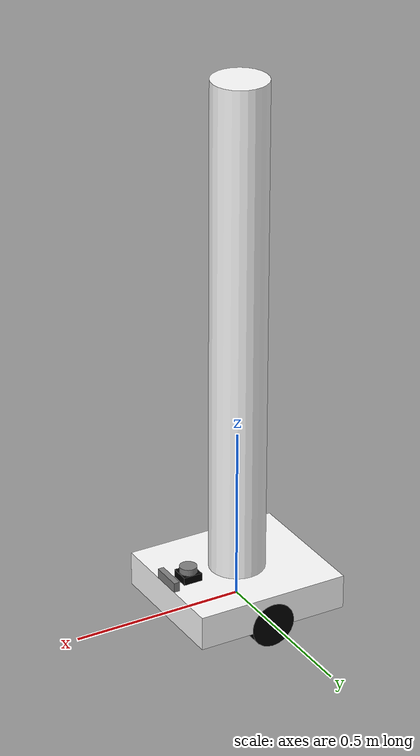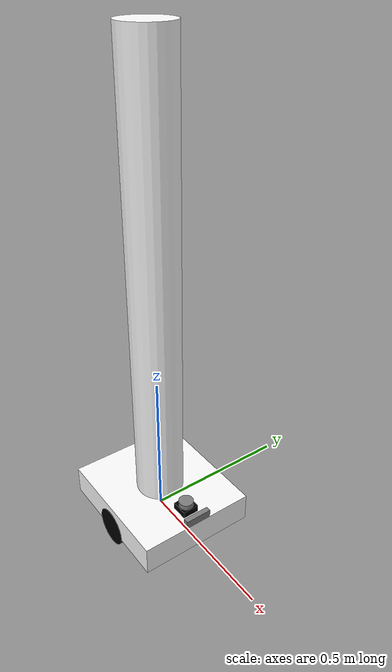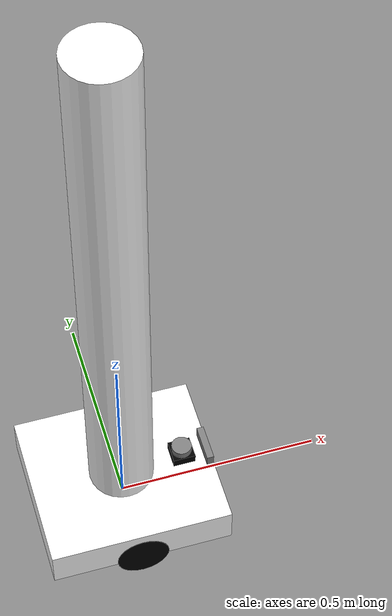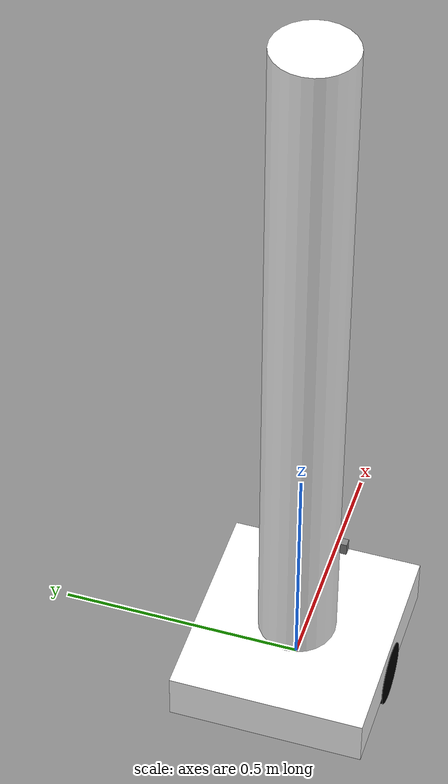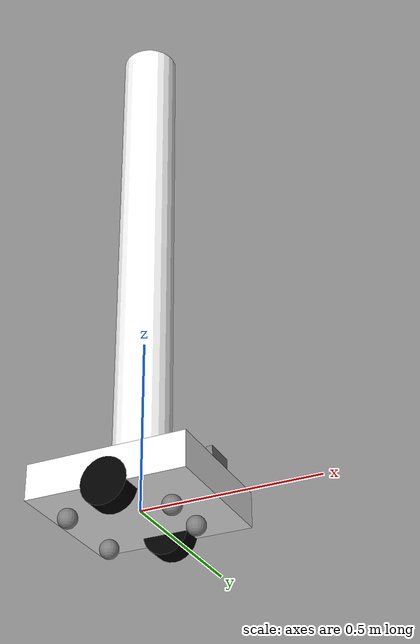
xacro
<?xml version="1.0"?>
<robot xmlns:xacro="http://www.ros.org/wiki/xacro"  name="robot">

    <xacro:arg name="use_ros2_control" default="true"/>

    <xacro:include filename="robot_core.xacro" />

    <xacro:if value="$(arg use_ros2_control)">
        <xacro:include filename="ros2_control.xacro" />
    </xacro:if>
    <xacro:unless value="$(arg use_ros2_control)">
        <xacro:include filename="gazebo_control.xacro" />
    </xacro:unless>

    <xacro:include filename="depth_camera.xacro" />

    <xacro:include filename="lidar.xacro" />

</robot>

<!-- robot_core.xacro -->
<robot xmlns:xacro="http://www.ros.org/wiki/xacro" >

    <xacro:include filename="inertial_macros.xacro"/>

    <material name="white">
        <color rgba="1 1 1 1"/>
    </material>

    <material name="orange">
        <color rgba="1 0.3 0.1 1"/>
    </material>

    <material name="blue">
        <color rgba="0.2 0.2 1 1"/>
    </material>

    <material name="black">
        <color rgba="0 0 0 1"/>
    </material>

    <material name="gray">
        <color rgba="0.5 0.5 0.5 1"/>
    </material>

    <!-- BASE LINK -->
    <link name="base_link">

    </link>

    <!-- CHASSIS LINK -->
    <joint name="chassis_joint" type="fixed">
        <parent link="base_link"/>
        <child link="chassis"/>
        <origin xyz="-0.225 0 -0.0095"/>
    </joint>

    <link name="chassis">
        <visual>
            <origin xyz="0.225 0 0.05" rpy="0 0 0"/>
            <geometry>
                <box size="0.45 0.4 0.1"/>
            </geometry>
            <material name="white"/>
        </visual>
        <visual>
            <origin xyz="0.225 0 0.8"/>
            <geometry>
                <cylinder radius="0.08" length="1.5"/>
            </geometry>
            <material name="white"/>
        </visual>
        <collision>
            <origin xyz="0.225 0 0.05" rpy="0 0 0"/>
            <geometry>
                <box size="0.45 0.4 0.1"/>
            </geometry>
        </collision>
        <collision>
            <origin xyz="0.225 0 0.8"/>
            <geometry>
                <cylinder radius="0.08" length="1.5"/>
            </geometry>
            <material name="white"/>
        </collision>
        <xacro:inertial_box mass="12" x="0.45" y="0.4" z="0.1">
            <origin xyz="0.225 0 0.05" rpy="0 0 0"/>
        </xacro:inertial_box>
    </link>

    <gazebo reference="chassis">
        <material>Gazebo/White</material>
    </gazebo>

    <!-- LEFT WHEEL -->

    <joint name="left_wheel_joint" type="continuous">
        <parent link="base_link"/>
        <child link="left_wheel"/>
        <origin xyz="0 0.171 0" rpy="-${pi/2} 0 0"/>
        <axis xyz="0 0 1"/>
    </joint>

    <link name="left_wheel">
        <visual>
            <geometry>
                <cylinder length="0.06" radius="0.065" />
            </geometry>
            <material name="black"/>
        </visual>
        <collision>
            <geometry>
                <sphere radius="0.065" />
            </geometry>
        </collision>
        <xacro:inertial_cylinder mass="0.3" length="0.06" radius="0.065">
            <origin xyz="0 0 0" rpy="0 0 0"/>
        </xacro:inertial_cylinder>
    </link>

    <gazebo reference="left_wheel">
        <material>Gazebo/Black</material>
    </gazebo>

    <!-- RIGHT WHEEL -->

    <joint name="right_wheel_joint" type="continuous">
        <parent link="base_link"/>
        <child link="right_wheel"/>
        <origin xyz="0 -0.171 0" rpy="${pi/2} 0 0"/>
        <axis xyz="0 0 -1"/>
    </joint>

    <link name="right_wheel">
        <visual>
            <geometry>
                <cylinder length="0.06" radius="0.065" />
            </geometry>
            <material name="black"/>
        </visual>
        <collision>
            <geometry>
                <sphere radius="0.065" />
            </geometry>
        </collision>
        <xacro:inertial_cylinder mass="0.3" length="0.06" radius="0.065">
            <origin xyz="0 0 0" rpy="0 0 0"/>
        </xacro:inertial_cylinder>
    </link>

    <gazebo reference="right_wheel">
        <material>Gazebo/Black</material>
    </gazebo>

    <!-- CASTER WHEEL 1 -->

    <joint name="caster_wheel_joint_1" type="fixed">
        <parent link="chassis"/>
        <child link="caster_wheel_1"/>
        <origin xyz="0.075 0.11 -0.0265" rpy="0 0 0"/>
    </joint>

    <link name="caster_wheel_1">
        <visual>
            <geometry>
                <sphere radius="0.027" />
            </geometry>
            <material name="gray"/>
        </visual>
        <collision>
            <geometry>
                <sphere radius="0.027" />
            </geometry>
        </collision>
        <xacro:inertial_sphere mass="0.1" radius="0.027">
            <origin xyz="0 0 0" rpy="0 0 0"/>
        </xacro:inertial_sphere>
    </link>

    <gazebo reference="caster_wheel_1">
        <material>Gazebo/Gray</material>
        <mu1 value="0.001"/>
        <mu2 value="0.001"/>
    </gazebo>

    <!-- CASTER WHEEL 2 -->

    <joint name="caster_wheel_joint_2" type="fixed">
        <parent link="chassis"/>
        <child link="caster_wheel_2"/>
        <origin xyz="0.075 -0.11 -0.0265" rpy="0 0 0"/>
    </joint>

    <link name="caster_wheel_2">
        <visual>
            <geometry>
                <sphere radius="0.027" />
            </geometry>
            <material name="gray"/>
        </visual>
        <collision>
            <geometry>
                <sphere radius="0.027" />
            </geometry>
        </collision>
        <xacro:inertial_sphere mass="0.1" radius="0.027">
            <origin xyz="0 0 0" rpy="0 0 0"/>
        </xacro:inertial_sphere>
    </link>

    <gazebo reference="caster_wheel_2">
        <material>Gazebo/Gray</material>
        <mu1 value="0.001"/>
        <mu2 value="0.001"/>
    </gazebo>

    <!-- CASTER WHEEL 3 -->

    <joint name="caster_wheel_joint_3" type="fixed">
        <parent link="chassis"/>
        <child link="caster_wheel_3"/>
        <origin xyz="0.35 0.07 -0.0265" rpy="0 0 0"/>
    </joint>

    <link name="caster_wheel_3">
        <visual>
            <geometry>
                <sphere radius="0.027" />
            </geometry>
            <material name="gray"/>
        </visual>
        <collision>
            <geometry>
                <sphere radius="0.027" />
            </geometry>
        </collision>
        <xacro:inertial_sphere mass="0.1" radius="0.027">
            <origin xyz="0 0 0" rpy="0 0 0"/>
        </xacro:inertial_sphere>
    </link>

    <gazebo reference="caster_wheel_3">
        <material>Gazebo/Gray</material>
        <mu1 value="0.001"/>
        <mu2 value="0.001"/>
    </gazebo>

    <!-- CASTER WHEEL 4 -->

    <joint name="caster_wheel_joint_4" type="fixed">
        <parent link="chassis"/>
        <child link="caster_wheel_4"/>
        <origin xyz="0.35 -0.07 -0.0265" rpy="0 0 0"/>
    </joint>

    <link name="caster_wheel_4">
        <visual>
            <geometry>
                <sphere radius="0.027" />
            </geometry>
            <material name="gray"/>
        </visual>
        <collision>
            <geometry>
                <sphere radius="0.027" />
            </geometry>
        </collision>
        <xacro:inertial_sphere mass="0.1" radius="0.027">
            <origin xyz="0 0 0" rpy="0 0 0"/>
        </xacro:inertial_sphere>
    </link>

    <gazebo reference="caster_wheel_4">
        <material>Gazebo/Gray</material>
        <mu1 value="0.001"/>
        <mu2 value="0.001"/>
    </gazebo>

</robot>

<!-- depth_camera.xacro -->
<robot xmlns:xacro="http://www.ros.org/wiki/xacro" >

    <joint name="camera_joint" type="fixed">
        <parent link="chassis"/>
        <child link="camera_link"/>
        <origin xyz="0.44125 0 0.114" rpy="0 0 0"/>
    </joint>

    <link name="camera_link">
        <visual>
            <geometry>
                <box size="0.0175 0.091 0.028"/>
            </geometry>
            <material name="gray"/>
        </visual>
    </link>

    <joint name="camera_optical_joint" type="fixed">
        <parent link="camera_link"/>
        <child link="camera_link_optical"/>
        <origin xyz="0 0 0" rpy="${-pi/2} 0 ${-pi/2}"/>
    </joint>

    <link name="camera_link_optical">

    </link>

    <gazebo reference="camera_link">
        <material>Gazebo/Gray</material>

        <sensor name="camera" type="depth">
            <pose> 0 0 0 0 0 0 </pose>
            <visualize>true</visualize>
            <update_rate>10</update_rate>
            <camera>
                <horizontal_fov>1.089</horizontal_fov>
                <image>
                    <format>B8G8R8</format>
                    <width>640</width>
                    <height>480</height>
                </image>
                <clip>
                    <near>0.05</near>
                    <far>8.0</far>
                </clip>
            </camera>
            <plugin name="camera_controller" filename="libgazebo_ros_camera.so">
                <frame_name>camera_link_optical</frame_name>
                <min_depth>0.1</min_depth>
                <max_depth>100.0</max_depth>
            </plugin>
        </sensor>
    </gazebo>

</robot>

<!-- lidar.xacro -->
<robot xmlns:xacro="http://www.ros.org/wiki/xacro" >

    <joint name="laser_joint" type="fixed">
        <parent link="chassis"/>
        <child link="laser_frame"/>
        <origin xyz="0.38 0 0.132" rpy="0 0 0"/>
    </joint>

    <link name="laser_frame">
        <visual>
            <geometry>
                <cylinder radius="0.025" length="0.018"/>
            </geometry>
            <material name="gray"/>
        </visual>
        <visual>
            <origin xyz="0 0 -0.0205"/>
            <geometry>
                <box size="0.0555 0.0555 0.023"/>
            </geometry>
            <material name="black"/>
        </visual>
        <collision>
            <geometry>
                <cylinder radius="0.025" length="0.018"/>
            </geometry>
        </collision>
        <collision>
            <origin xyz="0 0 -0.0205"/>
            <geometry>
                <box size="0.0555 0.0555 0.023"/>
            </geometry>
            <material name="black"/>
        </collision>
        <xacro:inertial_cylinder mass="0.11" length="0.018" radius="0.025">
            <origin xyz="0 0 0" rpy="0 0 0"/>
        </xacro:inertial_cylinder>
    </link>

    <gazebo reference="laser_frame">
        <material>Gazebo/Gray</material>

        <sensor name="laser" type="ray">
            <pose> 0 0 0 0 0 0 </pose>
            <visualize>true</visualize>
            <update_rate>10</update_rate>
            <ray>
                <scan>
                    <horizontal>
                        <samples>360</samples>
                        <min_angle>-3.14</min_angle>
                        <max_angle>3.14</max_angle>
                    </horizontal>
                </scan>
                <range>
                    <min>0.3</min>
                    <max>12</max>
                </range>
            </ray>
            <plugin name="laser_controller" filename="libgazebo_ros_ray_sensor.so">
                <ros>
                    <argument>~/out:=scan</argument>
                </ros>
                <output_type>sensor_msgs/LaserScan</output_type>
                <frame_name>laser_frame</frame_name>
            </plugin>
        </sensor>
    </gazebo>

</robot>
